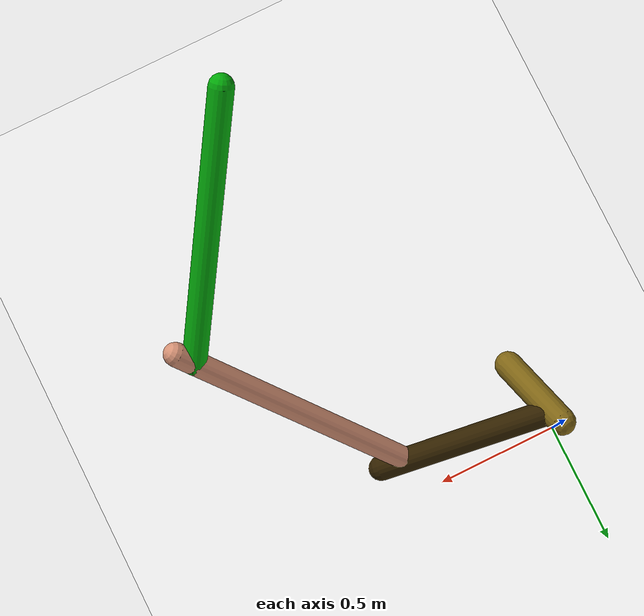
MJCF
<mujoco model="morphology">
  <option timestep="0.01"/>
  <default>
    <default class="/"/>
    <default class="0/"/>
    <default class="0/1/"/>
    <default class="0/1/2/"/>
    <default class="0/1/2/3/"/>
  </default>
  <asset>
    <texture name="texplane" type="2d" builtin="checker" rgb1="0.10000000000000001 0.20000000000000001 0.29999999999999999" rgb2="0.20000000000000001 0.29999999999999999 0.40000000000000002" width="300" height="300"/>
    <material name="MatPlane" class="/" texture="texplane" texrepeat="20 20" specular="1" shininess="1" reflectance="0.5"/>
  </asset>
  <worldbody>
    <light name="//unnamed_light_0" class="/" directional="true" pos="0 0 1.5" dir="0 0 -1.3" cutoff="100" exponent="1" diffuse="1 1 1" specular="0.10000000000000001 0.10000000000000001 0.10000000000000001"/>
    <geom name="ground" class="/" type="plane" size="15 15 0.5" material="MatPlane" rgba="1 1 1 1"/>
    <site name="body" class="/" size="9.9999999999999995e-07 9.9999999999999995e-07 9.9999999999999995e-07" pos="0 0 0.37082628011703489"/>
    <body pos="0 0 0.37082628011703489" name="0/">
      <freejoint name="0/"/>
      <geom name="0/geom" class="0/" type="capsule" contype="1" conaffinity="1" condim="3" size="0.054826999059214572" rgba="0.51319557449179309 0.40740438898858178 0.088581802511996099 1" friction="0.59999999999999998 0.10000000000000001 0.10000000000000001" fromto="0 0 0 0.07003374382587757 -0.29540862975922549 -0.13298670429725679"/>
      <site name="0/end0" class="0/" size="0.0050000000000000001" pos="0.07003374382587757 -0.29540862975922549 -0.13298670429725679"/>
      <site name="0/attach1" class="0/" size="9.9999999999999995e-07 9.9999999999999995e-07 9.9999999999999995e-07" pos="0.012918038887264593 -0.054489449776539987 -0.024529995452939699"/>
      <body pos="0.012918038887264593 -0.054489449776539987 -0.024529995452939699" name="0/1/">
        <joint name="0/1/joint/" class="0/" type="hinge" axis="0 0 1" limited="true" range="-43.645540966606475 43.645540966606475"/>
        <geom name="0/1/geom" class="0/1/" type="capsule" contype="1" conaffinity="1" condim="3" size="0.051179309392061945" rgba="0.19520293078740447 0.12988112398751861 0.00085640655879115624 1" friction="0.59999999999999998 0.10000000000000001 0.10000000000000001" fromto="0 0 0 0.68565723174719961 -0.10438689245950528 -0.24629627140415444"/>
        <site name="0/1/end1" class="0/1/" size="0.0050000000000000001" pos="0.68565723174719961 -0.10438689245950528 -0.24629627140415444"/>
        <site name="0/1/attach2" class="0/1/" size="9.9999999999999995e-07 9.9999999999999995e-07 9.9999999999999995e-07" pos="0.5790680668529643 -0.088159379384480444 -0.20800816960927396"/>
        <body pos="0.5790680668529643 -0.088159379384480444 -0.20800816960927396" name="0/1/2/">
          <joint name="0/1/2/joint/" class="0/1/" type="hinge" axis="0.36346066148116568 0.36353761707447296 0.85775098281930717" limited="true" range="-40.702379467311474 40.702379467311474"/>
          <geom name="0/1/2/geom" class="0/1/2/" type="capsule" contype="1" conaffinity="1" condim="3" size="0.045744311919325292" rgba="0.85062430111168763 0.58026434984009734 0.46617690453029126 1" friction="0.59999999999999998 0.10000000000000001 0.10000000000000001" fromto="0 0 0 0.61133386616621888 -0.6947575859277294 0.67166613830591615"/>
          <site name="0/1/2/end2" class="0/1/2/" size="0.0050000000000000001" pos="0.61133386616621888 -0.6947575859277294 0.67166613830591615"/>
          <site name="0/1/2/attach3" class="0/1/2/" size="9.9999999999999995e-07 9.9999999999999995e-07 9.9999999999999995e-07" pos="0.56503402384707069 -0.64213958378724312 0.62079698477824352"/>
          <body pos="0.56503402384707069 -0.64213958378724312 0.62079698477824352" name="0/1/2/3/">
            <joint name="0/1/2/3/joint/" class="0/1/2/" type="hinge" axis="-5.5511151231257827e-17 0.69505801160811453 0.71895365671187339" limited="true" range="-58.841912778265922 58.841912778265922"/>
            <geom name="0/1/2/3/geom" class="0/1/2/3/" type="capsule" contype="1" conaffinity="1" condim="3" size="0.046950027062468085" rgba="0.014914339981940472 0.67162844718955006 0.042437512780054698 1" friction="0.59999999999999998 0.10000000000000001 0.10000000000000001" fromto="0 0 0 -0.51596616509936721 -0.72950551121388285 0.58808227259452917"/>
            <site name="0/1/2/3/end3" class="0/1/2/3/" size="0.0050000000000000001" pos="-0.51596616509936721 -0.72950551121388285 0.58808227259452917"/>
          </body>
        </body>
      </body>
      <camera name="0/iso" class="0/" mode="trackcom" pos="-2.2999999999999998 -2.2999999999999998 1" xyaxes="0.45000000000000001 -0.45000000000000001 0 0.29999999999999999 0.14999999999999999 0.93999999999999995"/>
    </body>
  </worldbody>
  <actuator>
    <motor name="0/1/motor" class="0/1/" ctrllimited="true" ctrlrange="-1 1" gear="55" joint="0/1/joint/"/>
    <motor name="0/1/2/motor" class="0/1/2/" ctrllimited="true" ctrlrange="-1 1" gear="74" joint="0/1/2/joint/"/>
    <motor name="0/1/2/3/motor" class="0/1/2/3/" ctrllimited="true" ctrlrange="-1 1" gear="94" joint="0/1/2/3/joint/"/>
  </actuator>
  <sensor>
    <subtreelinvel name="velocity" body="0/"/>
  </sensor>
</mujoco>
